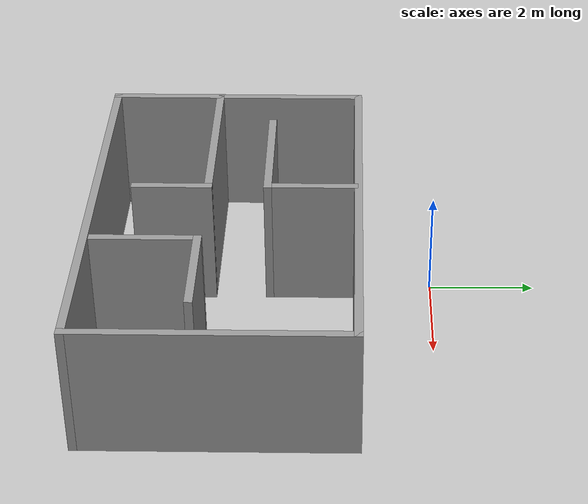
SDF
<?xml version='1.0'?>
<sdf version='1.7'>
  <model name='room'>
    <pose>0.845 -3.1675 0 0 -0 0</pose>
    <link name='Wall_0'>
      <collision name='Wall_0_Collision'>
        <geometry>
          <box>
            <size>8 0.15 2.5</size>
          </box>
        </geometry>
        <pose>0 0 1.25 0 -0 0</pose>
      </collision>
      <visual name='Wall_0_Visual'>
        <pose>0 0 1.25 0 -0 0</pose>
        <geometry>
          <box>
            <size>8 0.15 2.5</size>
          </box>
        </geometry>
        <material>
          <script>
            <uri>file://media/materials/scripts/gazebo.material</uri>
            <name>Gazebo/Grey</name>
          </script>
          <ambient>1 1 1 1</ambient>
        </material>
        <meta>
          <layer>0</layer>
        </meta>
      </visual>
      <pose>0 1.7575 0 0 -0 0</pose>
    </link>
    <link name='Wall_1'>
      <collision name='Wall_1_Collision'>
        <geometry>
          <box>
            <size>5 0.15 2.5</size>
          </box>
        </geometry>
        <pose>0 0 1.25 0 -0 0</pose>
      </collision>
      <visual name='Wall_1_Visual'>
        <pose>0 0 1.25 0 -0 0</pose>
        <geometry>
          <box>
            <size>5 0.15 2.5</size>
          </box>
        </geometry>
        <material>
          <script>
            <uri>file://media/materials/scripts/gazebo.material</uri>
            <name>Gazebo/Grey</name>
          </script>
          <ambient>1 1 1 1</ambient>
        </material>
        <meta>
          <layer>0</layer>
        </meta>
      </visual>
      <pose>3.925 -0.6675 0 0 -0 -1.5708</pose>
    </link>
    <link name='Wall_11'>
      <collision name='Wall_11_Collision'>
        <geometry>
          <box>
            <size>2 0.15 2.5</size>
          </box>
        </geometry>
        <pose>0 0 1.25 0 -0 0</pose>
      </collision>
      <visual name='Wall_11_Visual'>
        <pose>0 0 1.25 0 -0 0</pose>
        <geometry>
          <box>
            <size>2 0.15 2.5</size>
          </box>
        </geometry>
        <material>
          <script>
            <uri>file://media/materials/scripts/gazebo.material</uri>
            <name>Gazebo/Grey</name>
          </script>
          <ambient>1 1 1 1</ambient>
        </material>
        <meta>
          <layer>0</layer>
        </meta>
      </visual>
      <pose>1.185 -2.0075 0 0 -0 1.5708</pose>
    </link>
    <link name='Wall_12'>
      <collision name='Wall_12_Collision'>
        <geometry>
          <box>
            <size>2 0.15 2.5</size>
          </box>
        </geometry>
        <pose>0 0 1.25 0 -0 0</pose>
      </collision>
      <visual name='Wall_12_Visual'>
        <pose>0 0 1.25 0 -0 0</pose>
        <geometry>
          <box>
            <size>2 0.15 2.5</size>
          </box>
        </geometry>
        <material>
          <script>
            <uri>file://media/materials/scripts/gazebo.material</uri>
            <name>Gazebo/Grey</name>
          </script>
          <ambient>1 1 1 1</ambient>
        </material>
        <meta>
          <layer>0</layer>
        </meta>
      </visual>
      <pose>2.11 -1.0825 0 0 -0 0</pose>
    </link>
    <link name='Wall_2'>
      <collision name='Wall_2_Collision'>
        <geometry>
          <box>
            <size>8 0.15 2.5</size>
          </box>
        </geometry>
        <pose>0 0 1.25 0 -0 0</pose>
      </collision>
      <visual name='Wall_2_Visual'>
        <pose>0 0 1.25 0 -0 0</pose>
        <geometry>
          <box>
            <size>8 0.15 2.5</size>
          </box>
        </geometry>
        <material>
          <script>
            <uri>file://media/materials/scripts/gazebo.material</uri>
            <name>Gazebo/Grey</name>
          </script>
          <ambient>1 1 1 1</ambient>
        </material>
        <meta>
          <layer>0</layer>
        </meta>
      </visual>
      <pose>0 -3.0925 0 0 -0 3.14159</pose>
    </link>
    <link name='Wall_3'>
      <collision name='Wall_3_Collision'>
        <geometry>
          <box>
            <size>5 0.15 2.5</size>
          </box>
        </geometry>
        <pose>0 0 1.25 0 -0 0</pose>
      </collision>
      <visual name='Wall_3_Visual'>
        <pose>0 0 1.25 0 -0 0</pose>
        <geometry>
          <box>
            <size>5 0.15 2.5</size>
          </box>
        </geometry>
        <material>
          <script>
            <uri>file://media/materials/scripts/gazebo.material</uri>
            <name>Gazebo/Grey</name>
          </script>
          <ambient>1 1 1 1</ambient>
        </material>
        <meta>
          <layer>0</layer>
        </meta>
      </visual>
      <pose>-3.925 -0.6675 0 0 -0 1.5708</pose>
    </link>
    <link name='Wall_5'>
      <collision name='Wall_5_Collision'>
        <geometry>
          <box>
            <size>1.75 0.15 2.5</size>
          </box>
        </geometry>
        <pose>0 0 1.25 0 -0 0</pose>
      </collision>
      <visual name='Wall_5_Visual'>
        <pose>0 0 1.25 0 -0 0</pose>
        <geometry>
          <box>
            <size>1.75 0.15 2.5</size>
          </box>
        </geometry>
        <material>
          <script>
            <uri>file://media/materials/scripts/gazebo.material</uri>
            <name>Gazebo/Grey</name>
          </script>
          <ambient>1 1 1 1</ambient>
        </material>
        <meta>
          <layer>0</layer>
        </meta>
      </visual>
      <pose>-0.555 0.8775 0 0 -0 -1.5708</pose>
    </link>
    <link name='Wall_6'>
      <collision name='Wall_6_Collision'>
        <geometry>
          <box>
            <size>2.5 0.15 2.5</size>
          </box>
        </geometry>
        <pose>0 0 1.25 0 -0 0</pose>
      </collision>
      <visual name='Wall_6_Visual'>
        <pose>0 0 1.25 0 -0 0</pose>
        <geometry>
          <box>
            <size>2.5 0.15 2.5</size>
          </box>
        </geometry>
        <material>
          <script>
            <uri>file://media/materials/scripts/gazebo.material</uri>
            <name>Gazebo/Grey</name>
          </script>
          <ambient>1 1 1 1</ambient>
        </material>
        <meta>
          <layer>0</layer>
        </meta>
      </visual>
      <pose>-1.73 0.0775 0 0 -0 3.14159</pose>
    </link>
    <link name='Wall_8'>
      <collision name='Wall_8_Collision'>
        <geometry>
          <box>
            <size>3.5 0.15 2.5</size>
          </box>
        </geometry>
        <pose>0 0 1.25 0 -0 0</pose>
      </collision>
      <visual name='Wall_8_Visual'>
        <pose>0 0 1.25 0 -0 0</pose>
        <geometry>
          <box>
            <size>3.5 0.15 2.5</size>
          </box>
        </geometry>
        <material>
          <script>
            <uri>file://media/materials/scripts/gazebo.material</uri>
            <name>Gazebo/Grey</name>
          </script>
          <ambient>1 1 1 1</ambient>
        </material>
        <meta>
          <layer>0</layer>
        </meta>
      </visual>
      <pose>-2.21 -1.0225 0 0 -0 0</pose>
    </link>
    <link name='Wall_9'>
      <collision name='Wall_9_Collision'>
        <geometry>
          <box>
            <size>1.5 0.15 2.5</size>
          </box>
        </geometry>
        <pose>0 0 1.25 0 -0 0</pose>
      </collision>
      <visual name='Wall_9_Visual'>
        <pose>0 0 1.25 0 -0 0</pose>
        <geometry>
          <box>
            <size>1.5 0.15 2.5</size>
          </box>
        </geometry>
        <material>
          <script>
            <uri>file://media/materials/scripts/gazebo.material</uri>
            <name>Gazebo/Grey</name>
          </script>
          <ambient>1 1 1 1</ambient>
        </material>
        <meta>
          <layer>0</layer>
        </meta>
      </visual>
      <pose>-0.535 -1.6975 0 0 -0 -1.5708</pose>
    </link>
    <static>1</static>
  </model>
</sdf>
